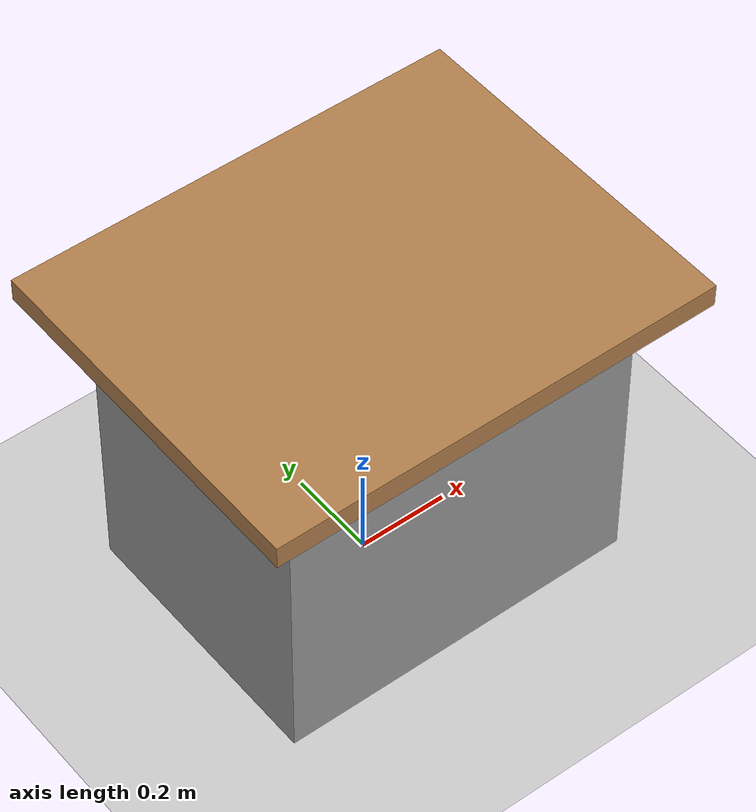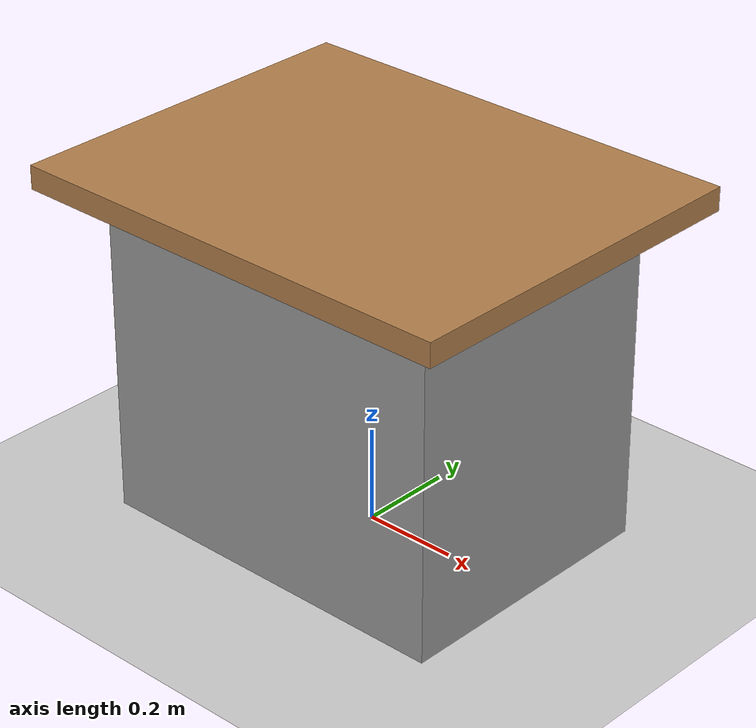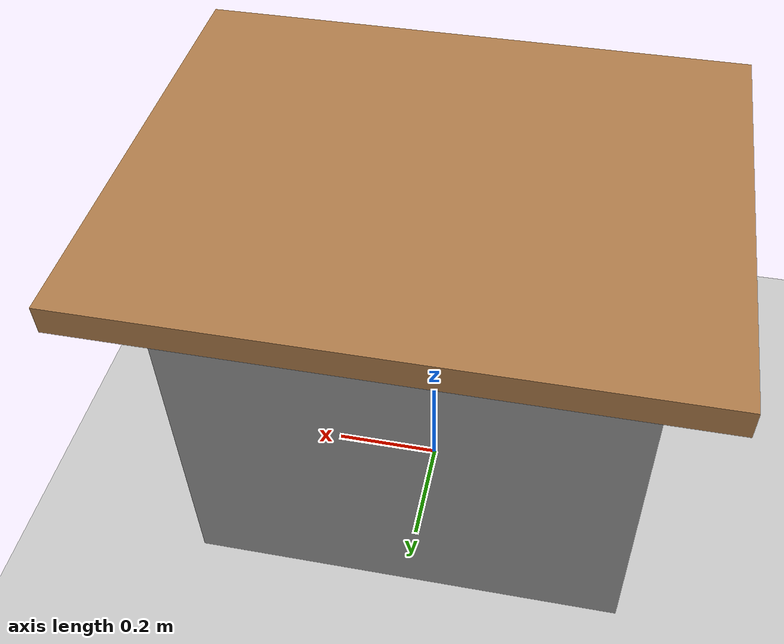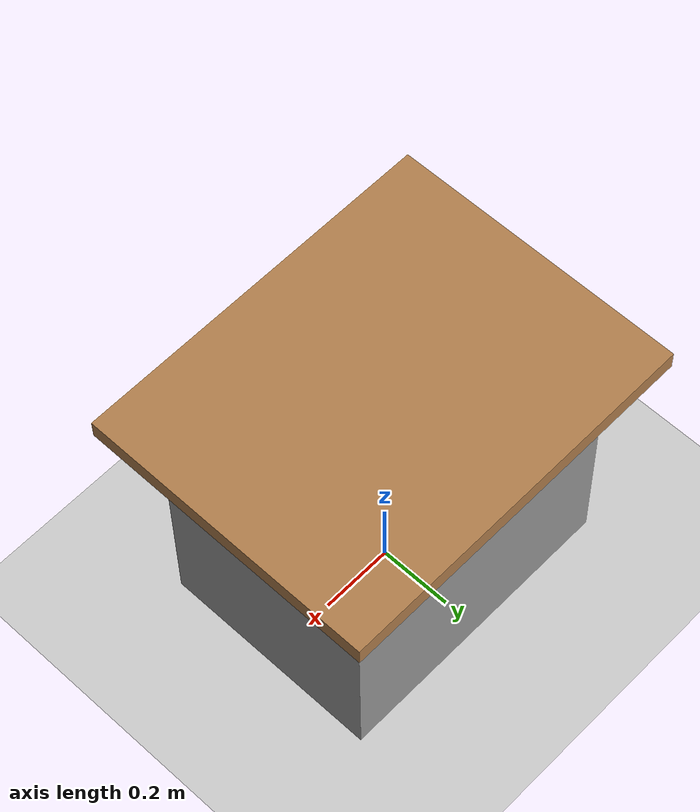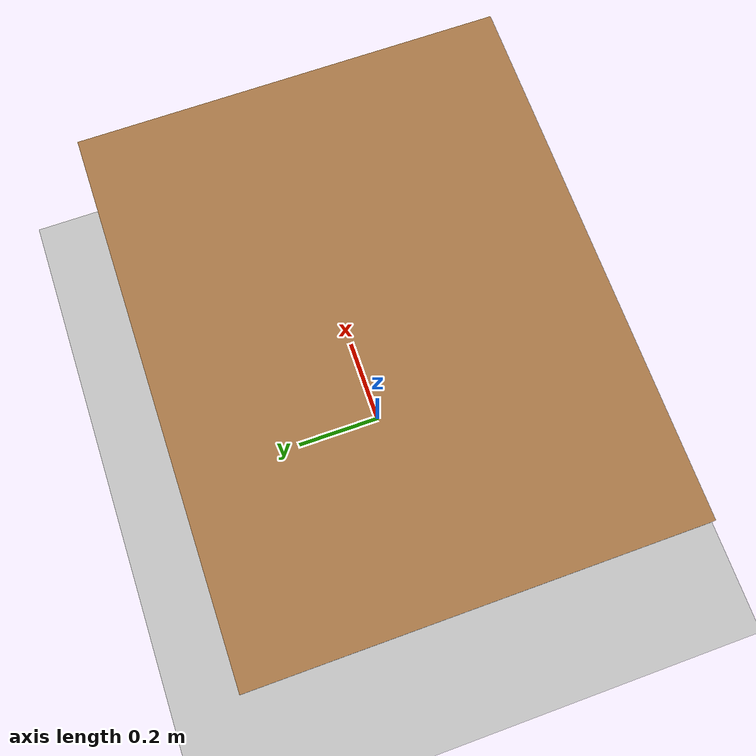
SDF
<?xml version="1.0"?>
<sdf version="1.6">
  <world name="yolo_check">
    <physics type="ode">
      <max_step_size>0.001</max_step_size>
      <real_time_update_rate>1000</real_time_update_rate>
    </physics>
    <scene>
      <ambient>0.5 0.5 0.5 1</ambient>
      <background>0.7 0.7 0.7 1</background>
      <shadows>true</shadows>
    </scene>
    <include><uri>model://sun</uri></include>
    <include><uri>model://ground_plane</uri></include>
    <light name="ceiling" type="point">
      <pose>0 0 2.6 0 0 0</pose>
      <diffuse>0.5 0.5 0.5 1</diffuse>
      <specular>0.1 0.1 0.1 1</specular>
      <attenuation><range>10</range><constant>0.6</constant><linear>0.05</linear><quadratic>0.0</quadratic></attenuation>
      <cast_shadows>false</cast_shadows>
    </light>

    <!-- fill light from the camera side (typical lab: several ceiling/wall lights) -->
    <light name="fill" type="directional">
      <pose>-2 0 3 0 0 0</pose>
      <diffuse>0.6 0.6 0.6 1</diffuse>
      <specular>0.05 0.05 0.05 1</specular>
      <direction>0.8 0.2 -0.6</direction>
      <cast_shadows>false</cast_shadows>
    </light>

    <plugin name="gazebo_ros_state" filename="libgazebo_ros_state.so">
      <ros><namespace>/gazebo</namespace></ros>
      <update_rate>10.0</update_rate>
    </plugin>

    <model name="table">
      <static>true</static>
      <pose>0 0 0 0 0 0</pose>
      <link name="link">
        <collision name="top_c"><pose>0 0 0.725 0 0 0</pose><geometry><box><size>1.0 0.8 0.05</size></box></geometry></collision>
        <visual name="top_v"><pose>0 0 0.725 0 0 0</pose><geometry><box><size>1.0 0.8 0.05</size></box></geometry>
          <material><script><uri>file://media/materials/scripts/gazebo.material</uri><name>Gazebo/Wood</name></script></material></visual>
        <visual name="leg"><pose>0 0 0.35 0 0 0</pose><geometry><box><size>0.8 0.6 0.7</size></box></geometry>
          <material><script><uri>file://media/materials/scripts/gazebo.material</uri><name>Gazebo/Grey</name></script></material></visual>
      </link>
    </model>

    <model name="camera_oblique">
      <static>true</static>
      <!-- 1.0 m from table centre along the optical axis: x=-0.643, z=0.75+0.766 -->
      <pose>-0.643 0 1.516 0 0.8727 0</pose>
      <link name="camera_link">
        <sensor name="rgbd" type="depth">
          <always_on>true</always_on>
          <update_rate>10</update_rate>
          <camera>
            <horizontal_fov>1.2112</horizontal_fov>
            <image><width>640</width><height>480</height><format>R8G8B8</format></image>
            <clip><near>0.1</near><far>5.0</far></clip>
          </camera>
          <plugin name="cam" filename="libgazebo_ros_camera.so">
            <ros>
              <namespace>/camera</namespace>
              <remapping>color/depth/image_raw:=depth/image_raw</remapping>
              <remapping>color/depth/camera_info:=depth/camera_info</remapping>
              <remapping>color/points:=depth/points</remapping>
            </ros>
            <camera_name>color</camera_name>
            <frame_name>camera_color_optical_frame</frame_name>
            <min_depth>0.1</min_depth>
            <max_depth>5.0</max_depth>
          </plugin>
        </sensor>
      </link>
    </model>

    <model name="camera_top">
      <static>true</static>
      <pose>0 0 1.70 0 1.5708 0</pose>
      <link name="camera_link">
        <sensor name="rgbd" type="depth">
          <always_on>true</always_on>
          <update_rate>10</update_rate>
          <camera>
            <horizontal_fov>1.2112</horizontal_fov>
            <image><width>640</width><height>480</height><format>R8G8B8</format></image>
            <clip><near>0.1</near><far>5.0</far></clip>
          </camera>
          <plugin name="cam" filename="libgazebo_ros_camera.so">
            <ros>
              <namespace>/camera_top</namespace>
              <remapping>color/depth/image_raw:=depth/image_raw</remapping>
              <remapping>color/depth/camera_info:=depth/camera_info</remapping>
              <remapping>color/points:=depth/points</remapping>
            </ros>
            <camera_name>color</camera_name>
            <frame_name>camera_top_color_optical_frame</frame_name>
            <min_depth>0.1</min_depth>
            <max_depth>5.0</max_depth>
          </plugin>
        </sensor>
      </link>
    </model>

    <model name="camera_near">
      <static>true</static>
      <!-- 0.7 m from table centre along the optical axis: x=-0.450, z=0.75+0.536 -->
      <pose>-0.450 0 1.286 0 0.8727 0</pose>
      <link name="camera_link">
        <sensor name="rgbd" type="depth">
          <always_on>true</always_on>
          <update_rate>10</update_rate>
          <camera>
            <horizontal_fov>1.2112</horizontal_fov>
            <image><width>640</width><height>480</height><format>R8G8B8</format></image>
            <clip><near>0.1</near><far>5.0</far></clip>
          </camera>
          <plugin name="cam" filename="libgazebo_ros_camera.so">
            <ros>
              <namespace>/camera_near</namespace>
              <remapping>color/depth/image_raw:=depth/image_raw</remapping>
              <remapping>color/depth/camera_info:=depth/camera_info</remapping>
              <remapping>color/points:=depth/points</remapping>
            </ros>
            <camera_name>color</camera_name>
            <frame_name>camera_near_color_optical_frame</frame_name>
            <min_depth>0.1</min_depth>
            <max_depth>5.0</max_depth>
          </plugin>
        </sensor>
      </link>
    </model>

    <model name="camera_top_near">
      <static>true</static>
      <pose>0 0 1.40 0 1.5708 0</pose>
      <link name="camera_link">
        <sensor name="rgbd" type="depth">
          <always_on>true</always_on>
          <update_rate>10</update_rate>
          <camera>
            <horizontal_fov>1.2112</horizontal_fov>
            <image><width>640</width><height>480</height><format>R8G8B8</format></image>
            <clip><near>0.1</near><far>5.0</far></clip>
          </camera>
          <plugin name="cam" filename="libgazebo_ros_camera.so">
            <ros>
              <namespace>/camera_top_near</namespace>
              <remapping>color/depth/image_raw:=depth/image_raw</remapping>
              <remapping>color/depth/camera_info:=depth/camera_info</remapping>
              <remapping>color/points:=depth/points</remapping>
            </ros>
            <camera_name>color</camera_name>
            <frame_name>camera_top_near_color_optical_frame</frame_name>
            <min_depth>0.1</min_depth>
            <max_depth>5.0</max_depth>
          </plugin>
        </sensor>
      </link>
    </model>
  </world>
</sdf>
